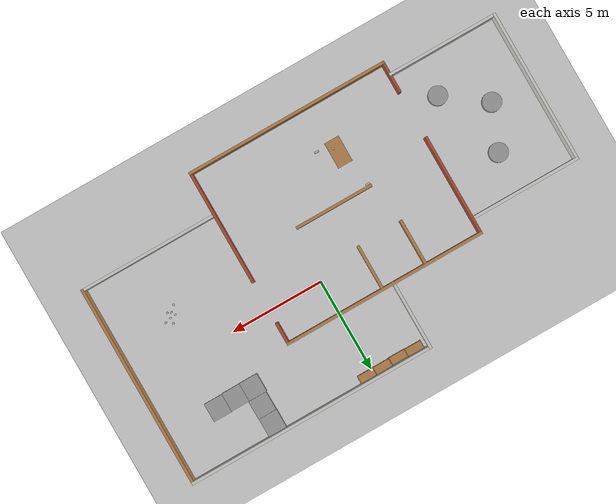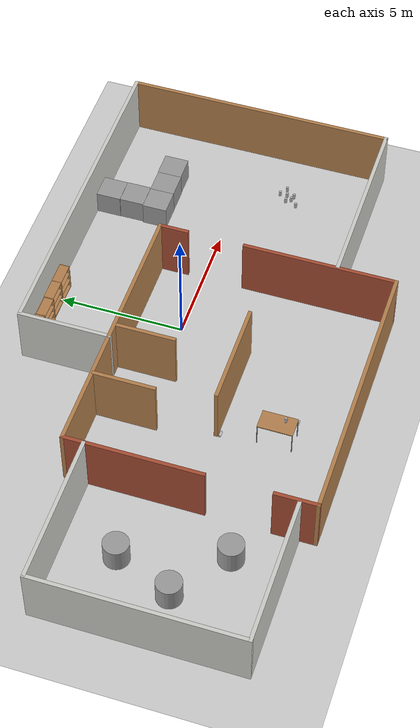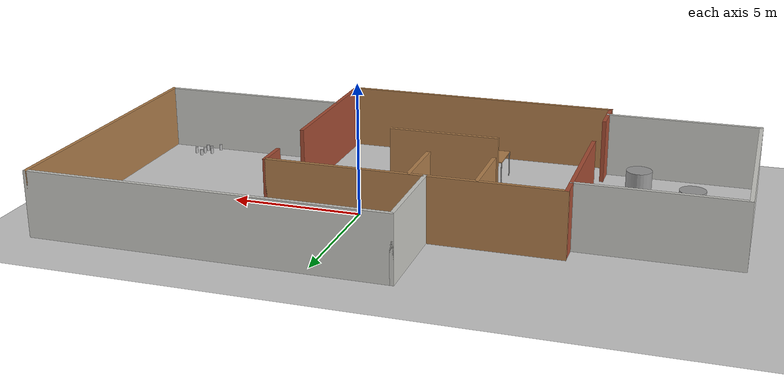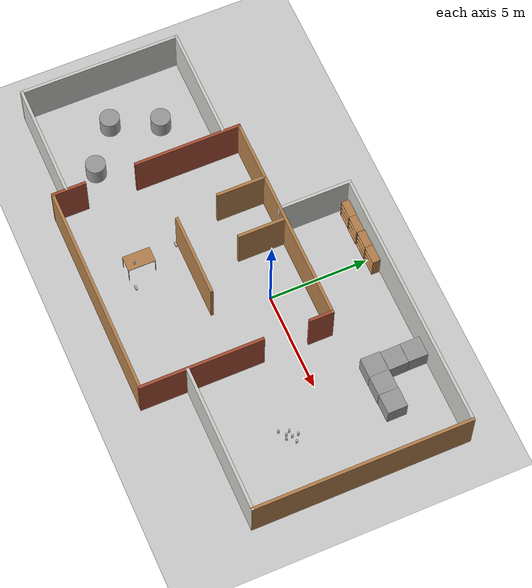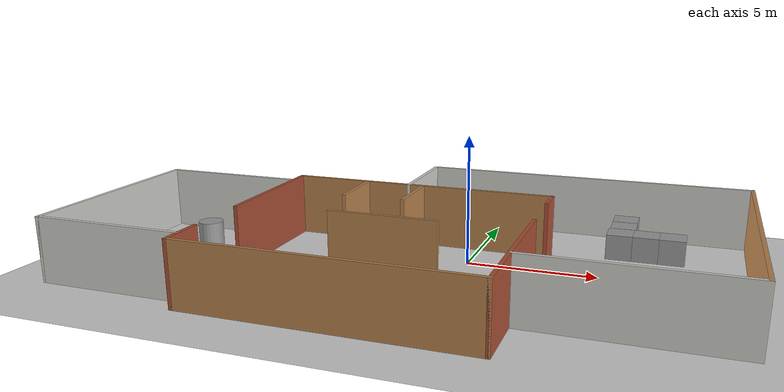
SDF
<sdf version="1.6">
 <world name="default">
  <light name="sun" type="directional">
   <pose>0 0 10 0 -0 0</pose>
   <diffuse>0.8 0.8 0.8 1</diffuse>
   <specular>0.1 0.1 0.1 1</specular>
   <attenuation>
    <range>1000</range>
    <constant>0.9</constant>
    <linear>0.01</linear>
    <quadratic>0.001</quadratic>
   </attenuation>
   <direction>-0.5 0.5 -1</direction>
  </light>
  <model name="ground_plane">
   <static>1</static>
   <link name="link">
    <collision name="collision">
     <geometry><plane><normal>0 0 1</normal><size>100 100</size></plane></geometry>
     <surface><friction><ode><mu>100</mu><mu2>50</mu2></ode></friction></surface>
    </collision>
    <visual name="visual">
     <cast_shadows>0</cast_shadows>
     <geometry><plane><normal>0 0 1</normal><size>100 100</size></plane></geometry>
     <material>
      <script><uri>file://media/materials/scripts/gazebo.material</uri><name>Gazebo/Grey</name></script>
     </material>
    </visual>
   </link>
  </model>
  <gravity>0 0 -9.8</gravity>
  <magnetic_field>6e-06 2.3e-05 -4.2e-05</magnetic_field>
  <atmosphere type="adiabatic"/>
  <physics name="default_physics" default="0" type="ode">
   <max_step_size>0.001</max_step_size>
   <real_time_factor>1</real_time_factor>
   <real_time_update_rate>1000</real_time_update_rate>
  </physics>
  <scene><ambient>0.4 0.4 0.4 1</ambient><background>0.7 0.7 0.7 1</background><shadows>1</shadows></scene>
  <spherical_coordinates>
   <surface_model>EARTH_WGS84</surface_model>
   <latitude_deg>0</latitude_deg>
   <longitude_deg>0</longitude_deg>
   <elevation>0</elevation>
   <heading_deg>0</heading_deg>
  </spherical_coordinates>
  <model name="test_world">
   <pose>-1.78434 -1.17966 0 0 -0 0</pose>
   <link name="Wall_1">
    <collision name="Wall_1_Collision">
     <geometry><box><size>4.25 0.15 2.5</size></box></geometry>
     <pose>0 0 1.25 0 -0 0</pose>
    </collision>
    <visual name="Wall_1_Visual">
     <pose>0 0 1.25 0 -0 0</pose>
     <geometry><box><size>4.25 0.15 2.5</size></box></geometry>
     <material>
      <script><uri>file://media/materials/scripts/gazebo.material</uri><name>Gazebo/Wood</name></script>
      <ambient>1 1 1 1</ambient>
     </material>
    </visual>
    <pose>-0.615659 -1.70034 0 0 -0 3.14159</pose>
   </link>
   <link name="Wall_12">
    <collision name="Wall_12_Collision">
     <geometry><box><size>11 0.15 2.5</size></box></geometry>
     <pose>0 0 1.25 0 -0 0</pose>
    </collision>
    <visual name="Wall_12_Visual">
     <pose>0 0 1.25 0 -0 0</pose>
     <geometry><box><size>11 0.15 2.5</size></box></geometry>
     <material>
      <script><uri>file://media/materials/scripts/gazebo.material</uri><name>Gazebo/Wood</name></script>
      <ambient>1 1 1 1</ambient>
     </material>
    </visual>
    <pose>-0.768184 -6.59875 0 0 -0 0</pose>
   </link>
   <link name="Wall_15">
    <collision name="Wall_15_Collision">
     <geometry><box><size>11 0.15 2.5</size></box></geometry>
     <pose>0 0 1.25 0 -0 0</pose>
    </collision>
    <visual name="Wall_15_Visual">
     <pose>0 0 1.25 0 -0 0</pose>
     <geometry><box><size>11 0.15 2.5</size></box></geometry>
     <material>
      <script><uri>file://media/materials/scripts/gazebo.material</uri><name>Gazebo/Wood</name></script>
      <ambient>1 1 1 1</ambient>
     </material>
    </visual>
    <pose>-0.768184 3.00125 0 0 -0 0</pose>
   </link>
   <link name="Wall_19">
    <collision name="Wall_19_Collision">
     <geometry><box><size>1.25 0.15 2.5</size></box></geometry>
     <pose>0 0 1.25 0 -0 0</pose>
    </collision>
    <visual name="Wall_19_Visual">
     <pose>0 0 1.25 0 -0 0</pose>
     <geometry><box><size>1.25 0.15 2.5</size></box></geometry>
     <material>
      <script><uri>file://media/materials/scripts/gazebo.material</uri><name>Gazebo/Bricks</name></script>
      <ambient>1 1 1 1</ambient>
     </material>
    </visual>
    <pose>4.65682 2.45125 0 0 0 -1.5708</pose>
   </link>
   <link name="Wall_21">
    <collision name="Wall_21_Collision">
     <geometry><box><size>6.25 0.15 2.5</size></box></geometry>
     <pose>0 0 1.25 0 -0 0</pose>
    </collision>
    <visual name="Wall_21_Visual">
     <pose>0 0 1.25 0 -0 0</pose>
     <geometry><box><size>6.25 0.15 2.5</size></box></geometry>
     <material>
      <script><uri>file://media/materials/scripts/gazebo.material</uri><name>Gazebo/Bricks</name></script>
      <ambient>1 1 1 1</ambient>
     </material>
    </visual>
    <pose>4.65682 -3.54875 0 0 -0 1.5708</pose>
   </link>
   <link name="Wall_23">
    <collision name="Wall_23_Collision">
     <geometry><box><size>5.5 0.15 2.5</size></box></geometry>
     <pose>0 0 1.25 0 -0 0</pose>
    </collision>
    <visual name="Wall_23_Visual">
     <pose>0 0 1.25 0 -0 0</pose>
     <geometry><box><size>5.5 0.15 2.5</size></box></geometry>
     <material>
      <script><uri>file://media/materials/scripts/gazebo.material</uri><name>Gazebo/Bricks</name></script>
      <ambient>1 1 1 1</ambient>
     </material>
    </visual>
    <pose>-6.19318 0.326247 0 0 0 -1.5708</pose>
   </link>
   <link name="Wall_25">
    <collision name="Wall_25_Collision">
     <geometry><box><size>1.75 0.15 2.5</size></box></geometry>
     <pose>0 0 1.25 0 -0 0</pose>
    </collision>
    <visual name="Wall_25_Visual">
     <pose>0 0 1.25 0 -0 0</pose>
     <geometry><box><size>1.75 0.15 2.5</size></box></geometry>
     <material>
      <script><uri>file://media/materials/scripts/gazebo.material</uri><name>Gazebo/Bricks</name></script>
      <ambient>1 1 1 1</ambient>
     </material>
    </visual>
    <pose>-6.19318 -5.79875 0 0 -0 1.5708</pose>
   </link>
   <link name="Wall_30">
    <collision name="Wall_30_Collision">
     <geometry><box><size>6 0.15 2.5</size></box></geometry>
     <pose>0 0 1.25 0 -0 0</pose>
    </collision>
    <visual name="Wall_30_Visual">
     <pose>0 0 1.25 0 -0 0</pose>
     <geometry><box><size>6 0.15 2.5</size></box></geometry>
     <material>
      <script><uri>file://media/materials/scripts/gazebo.material</uri><name>Gazebo/CeilingTiled</name></script>
      <ambient>1 1 1 1</ambient>
     </material>
    </visual>
    <pose>-9.15006 2.17634 0 0 -0 3.14159</pose>
   </link>
   <link name="Wall_31">
    <collision name="Wall_31_Collision">
     <geometry><box><size>8.25 0.15 2.5</size></box></geometry>
     <pose>0 0 1.25 0 -0 0</pose>
    </collision>
    <visual name="Wall_31_Visual">
     <pose>0 0 1.25 0 -0 0</pose>
     <geometry><box><size>8.25 0.15 2.5</size></box></geometry>
     <material>
      <script><uri>file://media/materials/scripts/gazebo.material</uri><name>Gazebo/CeilingTiled</name></script>
      <ambient>0.435294 0.796078 0.67451 1</ambient>
     </material>
    </visual>
    <pose>-12.0751 -1.87366 0 0 0 -1.5708</pose>
   </link>
   <link name="Wall_32">
    <collision name="Wall_32_Collision">
     <geometry><box><size>6 0.15 2.5</size></box></geometry>
     <pose>0 0 1.25 0 -0 0</pose>
    </collision>
    <visual name="Wall_32_Visual">
     <pose>0 0 1.25 0 -0 0</pose>
     <geometry><box><size>6 0.15 2.5</size></box></geometry>
     <material>
      <script><uri>file://media/materials/scripts/gazebo.material</uri><name>Gazebo/CeilingTiled</name></script>
      <ambient>1 1 1 1</ambient>
     </material>
    </visual>
    <pose>-9.15006 -5.92366 0 0 -0 0</pose>
   </link>
   <link name="Wall_34">
    <collision name="Wall_34_Collision">
     <geometry><box><size>2.5 0.15 2.5</size></box></geometry>
     <pose>0 0 1.25 0 -0 0</pose>
    </collision>
    <visual name="Wall_34_Visual">
     <pose>0 0 1.25 0 -0 0</pose>
     <geometry><box><size>2.5 0.15 2.5</size></box></geometry>
     <material>
      <script><uri>file://media/materials/scripts/gazebo.material</uri><name>Gazebo/Wood</name></script>
      <ambient>1 1 1 1</ambient>
     </material>
    </visual>
    <pose>-3.10226 1.75436 0 0 0 -1.5708</pose>
   </link>
   <link name="Wall_37">
    <collision name="Wall_37_Collision">
     <geometry><box><size>2.5 0.15 2.5</size></box></geometry>
     <pose>0 0 1.25 0 -0 0</pose>
    </collision>
    <visual name="Wall_37_Visual">
     <pose>0 0 1.25 0 -0 0</pose>
     <geometry><box><size>2.5 0.15 2.5</size></box></geometry>
     <material>
      <script><uri>file://media/materials/scripts/gazebo.material</uri><name>Gazebo/Wood</name></script>
      <ambient>1 1 1 1</ambient>
     </material>
    </visual>
    <pose>-0.673547 1.80062 0 0 0 -1.5708</pose>
   </link>
   <link name="Wall_39">
    <collision name="Wall_39_Collision">
     <geometry><box><size>3.75 0.15 2.5</size></box></geometry>
     <pose>0 0 1.25 0 -0 0</pose>
    </collision>
    <visual name="Wall_39_Visual">
     <pose>0 0 1.25 0 -0 0</pose>
     <geometry><box><size>3.75 0.15 2.5</size></box></geometry>
     <material>
      <script><uri>file://media/materials/scripts/gazebo.material</uri><name>Gazebo/CeilingTiled</name></script>
      <ambient>1 1 1 1</ambient>
     </material>
    </visual>
    <pose>-1.27494 4.79875 0 0 -0 1.5708</pose>
   </link>
   <link name="Wall_40">
    <collision name="Wall_40_Collision">
     <geometry><box><size>13.5 0.15 2.5</size></box></geometry>
     <pose>0 0 1.25 0 -0 0</pose>
    </collision>
    <visual name="Wall_40_Visual">
     <pose>0 0 1.25 0 -0 0</pose>
     <geometry><box><size>13.5 0.15 2.5</size></box></geometry>
     <material>
      <script><uri>file://media/materials/scripts/gazebo.material</uri><name>Gazebo/CeilingTiled</name></script>
      <ambient>1 1 1 1</ambient>
     </material>
    </visual>
    <pose>5.40006 6.59875 0 0 -0 0</pose>
   </link>
   <link name="Wall_41">
    <collision name="Wall_41_Collision">
     <geometry><box><size>11 0.15 2.5</size></box></geometry>
     <pose>0 0 1.25 0 -0 0</pose>
    </collision>
    <visual name="Wall_41_Visual">
     <pose>0 0 1.25 0 -0 0</pose>
     <geometry><box><size>11 0.15 2.5</size></box></geometry>
     <material>
      <script><uri>file://media/materials/scripts/gazebo.material</uri><name>Gazebo/Wood</name></script>
      <ambient>1 1 1 1</ambient>
     </material>
    </visual>
    <pose>12.0751 1.17375 0 0 0 -1.5708</pose>
   </link>
   <link name="Wall_42">
    <collision name="Wall_42_Collision">
     <geometry><box><size>7.5 0.15 2.5</size></box></geometry>
     <pose>0 0 1.25 0 -0 0</pose>
    </collision>
    <visual name="Wall_42_Visual">
     <pose>0 0 1.25 0 -0 0</pose>
     <geometry><box><size>7.5 0.15 2.5</size></box></geometry>
     <material>
      <script><uri>file://media/materials/scripts/gazebo.material</uri><name>Gazebo/CeilingTiled</name></script>
      <ambient>1 1 1 1</ambient>
     </material>
    </visual>
    <pose>8.40006 -4.25125 0 0 -0 3.14159</pose>
   </link>
   <static>1</static>
  </model>
  <model name="table">
   <static>0</static>
   <link name="link">
    <collision name="surface">
     <pose>0 0 1 0 -0 0</pose>
     <geometry><box><size>1.5 0.8 0.03</size></box></geometry>
     <surface><friction><ode><mu>0.6</mu><mu2>0.6</mu2></ode></friction></surface>
    </collision>
    <visual name="visual1">
     <pose>0 0 1 0 -0 0</pose>
     <geometry><box><size>1.4 0.8 0.04</size></box></geometry>
     <material>
      <script><uri>file://media/materials/scripts/gazebo.material</uri><name>Gazebo/Wood</name></script>
     </material>
    </visual>
    <collision name="front_left_leg">
     <pose>0.68 0.38 0.5 0 -0 0</pose>
     <geometry><cylinder><radius>0.02</radius><length>1</length></cylinder></geometry>
    </collision>
    <visual name="front_left_leg">
     <pose>0.68 0.38 0.5 0 -0 0</pose>
     <geometry><cylinder><radius>0.02</radius><length>1</length></cylinder></geometry>
     <material>
      <script><uri>file://media/materials/scripts/gazebo.material</uri><name>Gazebo/Grey</name></script>
     </material>
    </visual>
    <collision name="front_right_leg">
     <pose>0.68 -0.38 0.5 0 -0 0</pose>
     <geometry><cylinder><radius>0.02</radius><length>1</length></cylinder></geometry>
    </collision>
    <visual name="front_right_leg">
     <pose>0.68 -0.38 0.5 0 -0 0</pose>
     <geometry><cylinder><radius>0.02</radius><length>1</length></cylinder></geometry>
     <material>
      <script><uri>file://media/materials/scripts/gazebo.material</uri><name>Gazebo/Grey</name></script>
     </material>
    </visual>
    <collision name="back_right_leg">
     <pose>-0.68 -0.38 0.5 0 -0 0</pose>
     <geometry><cylinder><radius>0.02</radius><length>1</length></cylinder></geometry>
    </collision>
    <visual name="back_right_leg">
     <pose>-0.68 -0.38 0.5 0 -0 0</pose>
     <geometry><cylinder><radius>0.02</radius><length>1</length></cylinder></geometry>
     <material>
      <script><uri>file://media/materials/scripts/gazebo.material</uri><name>Gazebo/Grey</name></script>
     </material>
    </visual>
    <collision name="back_left_leg">
     <pose>-0.68 0.38 0.5 0 -0 0</pose>
     <geometry><cylinder><radius>0.02</radius><length>1</length></cylinder></geometry>
    </collision>
    <visual name="back_left_leg">
     <pose>-0.68 0.38 0.5 0 -0 0</pose>
     <geometry><cylinder><radius>0.02</radius><length>1</length></cylinder></geometry>
     <material>
      <script><uri>file://media/materials/scripts/gazebo.material</uri><name>Gazebo/Grey</name></script>
     </material>
    </visual>
    <inertial>
     <inertia><ixx>1</ixx><ixy>0</ixy><ixz>0</ixz><iyy>1</iyy><iyz>0</iyz><izz>1</izz></inertia>
     <mass>1</mass>
    </inertial>
   </link>
   <pose>-3.9313 -5.1003 -0.01973 -0.001367 0.002504 -1.57396</pose>
  </model>
  <model name="unit_box_0_2">
   <pose>5.4759 2.8341 0.5 0 -0 0.002449</pose>
   <link name="link">
    <inertial>
     <mass>1</mass>
     <inertia>
      <ixx>0.166667</ixx>
      <ixy>0</ixy>
      <ixz>0</ixz>
      <iyy>0.166667</iyy>
      <iyz>0</iyz>
      <izz>0.166667</izz>
     </inertia>
    </inertial>
    <collision name="collision"><geometry><box><size>1 1 1</size></box></geometry></collision>
    <visual name="visual">
     <geometry><box><size>1 1 1</size></box></geometry>
     <material>
      <script><name>Gazebo/Grey</name><uri>file://media/materials/scripts/gazebo.material</uri></script>
     </material>
    </visual>
   </link>
  </model>
  <model name="unit_box_0_3">
   <pose>5.50582 4.84337 0.5 0 -0 0.001441</pose>
   <link name="link">
    <inertial>
     <mass>1</mass>
     <inertia>
      <ixx>0.166667</ixx>
      <ixy>0</ixy>
      <ixz>0</ixz>
      <iyy>0.166667</iyy>
      <iyz>0</iyz>
      <izz>0.166667</izz>
     </inertia>
    </inertial>
    <collision name="collision"><geometry><box><size>1 1 1</size></box></geometry></collision>
    <visual name="visual">
     <geometry><box><size>1 1 1</size></box></geometry>
     <material>
      <script><name>Gazebo/Grey</name><uri>file://media/materials/scripts/gazebo.material</uri></script>
     </material>
    </visual>
   </link>
  </model>
  <model name="unit_box_0_4">
   <pose>5.52005 3.8392 0.5 0 -0 0.010006</pose>
   <link name="link">
    <inertial>
     <mass>1</mass>
     <inertia>
      <ixx>0.166667</ixx>
      <ixy>0</ixy>
      <ixz>0</ixz>
      <iyy>0.166667</iyy>
      <iyz>0</iyz>
      <izz>0.166667</izz>
     </inertia>
    </inertial>
    <collision name="collision"><geometry><box><size>1 1 1</size></box></geometry></collision>
    <visual name="visual">
     <geometry><box><size>1 1 1</size></box></geometry>
     <material>
      <script><name>Gazebo/Grey</name><uri>file://media/materials/scripts/gazebo.material</uri></script>
     </material>
    </visual>
   </link>
  </model>
  <model name="unit_box_0_5">
   <pose>6.47588 2.84475 0.499995 1e-05 -0 0.002442</pose>
   <link name="link">
    <inertial>
     <mass>1</mass>
     <inertia>
      <ixx>0.166667</ixx>
      <ixy>0</ixy>
      <ixz>0</ixz>
      <iyy>0.166667</iyy>
      <iyz>0</iyz>
      <izz>0.166667</izz>
     </inertia>
    </inertial>
    <collision name="collision"><geometry><box><size>1 1 1</size></box></geometry></collision>
    <visual name="visual">
     <geometry><box><size>1 1 1</size></box></geometry>
     <material>
      <script><name>Gazebo/Grey</name><uri>file://media/materials/scripts/gazebo.material</uri></script>
     </material>
    </visual>
   </link>
  </model>
  <model name="unit_box_0_6">
   <pose>7.47582 2.86667 0.493949 0.001752 0.000529 0.002428</pose>
   <link name="link">
    <inertial>
     <mass>1</mass>
     <inertia>
      <ixx>0.166667</ixx>
      <ixy>0</ixy>
      <ixz>0</ixz>
      <iyy>0.166667</iyy>
      <iyz>0</iyz>
      <izz>0.166667</izz>
     </inertia>
    </inertial>
    <collision name="collision"><geometry><box><size>1 1 1</size></box></geometry></collision>
    <visual name="visual">
     <geometry><box><size>1 1 1</size></box></geometry>
     <material>
      <script><name>Gazebo/Grey</name><uri>file://media/materials/scripts/gazebo.material</uri></script>
     </material>
    </visual>
   </link>
  </model>
  <model name="unit_cylinder_0">
   <pose>-9.55509 -5.07728 0.499997 3e-06 2e-06 0</pose>
   <link name="link">
    <inertial>
     <mass>1</mass>
     <inertia><ixx>0.145833</ixx><ixy>0</ixy><ixz>0</ixz><iyy>0.145833</iyy><iyz>0</iyz><izz>0.125</izz></inertia>
    </inertial>
    <collision name="collision">
     <geometry><cylinder><radius>0.5</radius><length>1</length></cylinder></geometry>
    </collision>
    <visual name="visual">
     <geometry><cylinder><radius>0.5</radius><length>1</length></cylinder></geometry>
     <material>
      <script><name>Gazebo/Grey</name><uri>file://media/materials/scripts/gazebo.material</uri></script>
     </material>
    </visual>
   </link>
  </model>
  <model name="unit_cylinder_1">
   <pose>-11.7072 -3.47956 0.499994 -3e-06 -2e-06 0</pose>
   <link name="link">
    <inertial>
     <mass>1</mass>
     <inertia><ixx>0.145833</ixx><ixy>0</ixy><ixz>0</ixz><iyy>0.145833</iyy><iyz>0</iyz><izz>0.125</izz></inertia>
    </inertial>
    <collision name="collision">
     <geometry><cylinder><radius>0.5</radius><length>1</length></cylinder></geometry>
    </collision>
    <visual name="visual">
     <geometry><cylinder><radius>0.5</radius><length>1</length></cylinder></geometry>
     <material>
      <script><name>Gazebo/Grey</name><uri>file://media/materials/scripts/gazebo.material</uri></script>
     </material>
    </visual>
   </link>
  </model>
  <model name="unit_cylinder_2">
   <pose>-10.7566 -1.1694 0.499997 3e-06 2e-06 0</pose>
   <link name="link">
    <inertial>
     <mass>1</mass>
     <inertia><ixx>0.145833</ixx><ixy>0</ixy><ixz>0</ixz><iyy>0.145833</iyy><iyz>0</iyz><izz>0.125</izz></inertia>
    </inertial>
    <collision name="collision">
     <geometry><cylinder><radius>0.5</radius><length>1</length></cylinder></geometry>
    </collision>
    <visual name="visual">
     <geometry><cylinder><radius>0.5</radius><length>1</length></cylinder></geometry>
     <material>
      <script><name>Gazebo/Grey</name><uri>file://media/materials/scripts/gazebo.material</uri></script>
     </material>
    </visual>
   </link>
  </model>
  <model name="bookshelf_1">
   <static>1</static>
   <link name="link">
    <inertial><mass>1</mass></inertial>
    <collision name="back">
     <pose>0 0.005 0.6 0 -0 0</pose>
     <geometry><box><size>0.9 0.01 1.2</size></box></geometry>
    </collision>
    <visual name="visual1">
     <pose>0 0.005 0.6 0 -0 0</pose>
     <geometry><box><size>0.9 0.01 1.2</size></box></geometry>
     <material>
      <script><uri>file://media/materials/scripts/gazebo.material</uri><name>Gazebo/Wood</name></script>
     </material>
    </visual>
    <collision name="left_side">
     <pose>0.45 -0.195 0.6 0 -0 0</pose>
     <geometry><box><size>0.02 0.4 1.2</size></box></geometry>
    </collision>
    <visual name="visual2">
     <pose>0.45 -0.195 0.6 0 -0 0</pose>
     <geometry><box><size>0.02 0.4 1.2</size></box></geometry>
     <material>
      <script><uri>file://media/materials/scripts/gazebo.material</uri><name>Gazebo/Wood</name></script>
     </material>
    </visual>
    <collision name="right_side">
     <pose>-0.45 -0.195 0.6 0 -0 0</pose>
     <geometry><box><size>0.02 0.4 1.2</size></box></geometry>
    </collision>
    <visual name="visual3">
     <pose>-0.45 -0.195 0.6 0 -0 0</pose>
     <geometry><box><size>0.02 0.4 1.2</size></box></geometry>
     <material>
      <script><uri>file://media/materials/scripts/gazebo.material</uri><name>Gazebo/Wood</name></script>
     </material>
    </visual>
    <collision name="bottom">
     <pose>0 -0.195 0.03 0 -0 0</pose>
     <geometry><box><size>0.88 0.4 0.06</size></box></geometry>
    </collision>
    <visual name="visual4">
     <pose>0 -0.195 0.03 0 -0 0</pose>
     <geometry><box><size>0.88 0.4 0.06</size></box></geometry>
     <material>
      <script><uri>file://media/materials/scripts/gazebo.material</uri><name>Gazebo/Wood</name></script>
     </material>
    </visual>
    <collision name="top">
     <pose>0 -0.195 1.19 0 -0 0</pose>
     <geometry><box><size>0.88 0.4 0.02</size></box></geometry>
    </collision>
    <visual name="visual5">
     <pose>0 -0.195 1.19 0 -0 0</pose>
     <geometry><box><size>0.88 0.4 0.02</size></box></geometry>
     <material>
      <script><uri>file://media/materials/scripts/gazebo.material</uri><name>Gazebo/Wood</name></script>
     </material>
    </visual>
    <collision name="low_shelf">
     <pose>0 -0.195 0.43 0 -0 0</pose>
     <geometry><box><size>0.88 0.4 0.02</size></box></geometry>
    </collision>
    <visual name="visual6">
     <pose>0 -0.195 0.43 0 -0 0</pose>
     <geometry><box><size>0.88 0.4 0.02</size></box></geometry>
     <material>
      <script><uri>file://media/materials/scripts/gazebo.material</uri><name>Gazebo/Wood</name></script>
     </material>
    </visual>
    <collision name="high_shelf">
     <pose>0 -0.195 0.8 0 -0 0</pose>
     <geometry><box><size>0.88 0.4 0.02</size></box></geometry>
    </collision>
    <visual name="visual7">
     <pose>0 -0.195 0.8 0 -0 0</pose>
     <geometry><box><size>0.88 0.4 0.02</size></box></geometry>
     <material>
      <script><uri>file://media/materials/scripts/gazebo.material</uri><name>Gazebo/Wood</name></script>
     </material>
    </visual>
   </link>
   <pose>-2.35602 5.3174 0 0 -0 0</pose>
  </model>
  <model name="bookshelf_1_clone">
   <static>1</static>
   <link name="link">
    <inertial><mass>1</mass></inertial>
    <collision name="back">
     <pose>0 0.005 0.6 0 -0 0</pose>
     <geometry><box><size>0.9 0.01 1.2</size></box></geometry>
    </collision>
    <visual name="visual1">
     <pose>0 0.005 0.6 0 -0 0</pose>
     <geometry><box><size>0.9 0.01 1.2</size></box></geometry>
     <material>
      <script><uri>file://media/materials/scripts/gazebo.material</uri><name>Gazebo/Wood</name></script>
     </material>
    </visual>
    <collision name="left_side">
     <pose>0.45 -0.195 0.6 0 -0 0</pose>
     <geometry><box><size>0.02 0.4 1.2</size></box></geometry>
    </collision>
    <visual name="visual2">
     <pose>0.45 -0.195 0.6 0 -0 0</pose>
     <geometry><box><size>0.02 0.4 1.2</size></box></geometry>
     <material>
      <script><uri>file://media/materials/scripts/gazebo.material</uri><name>Gazebo/Wood</name></script>
     </material>
    </visual>
    <collision name="right_side">
     <pose>-0.45 -0.195 0.6 0 -0 0</pose>
     <geometry><box><size>0.02 0.4 1.2</size></box></geometry>
    </collision>
    <visual name="visual3">
     <pose>-0.45 -0.195 0.6 0 -0 0</pose>
     <geometry><box><size>0.02 0.4 1.2</size></box></geometry>
     <material>
      <script><uri>file://media/materials/scripts/gazebo.material</uri><name>Gazebo/Wood</name></script>
     </material>
    </visual>
    <collision name="bottom">
     <pose>0 -0.195 0.03 0 -0 0</pose>
     <geometry><box><size>0.88 0.4 0.06</size></box></geometry>
    </collision>
    <visual name="visual4">
     <pose>0 -0.195 0.03 0 -0 0</pose>
     <geometry><box><size>0.88 0.4 0.06</size></box></geometry>
     <material>
      <script><uri>file://media/materials/scripts/gazebo.material</uri><name>Gazebo/Wood</name></script>
     </material>
    </visual>
    <collision name="top">
     <pose>0 -0.195 1.19 0 -0 0</pose>
     <geometry><box><size>0.88 0.4 0.02</size></box></geometry>
    </collision>
    <visual name="visual5">
     <pose>0 -0.195 1.19 0 -0 0</pose>
     <geometry><box><size>0.88 0.4 0.02</size></box></geometry>
     <material>
      <script><uri>file://media/materials/scripts/gazebo.material</uri><name>Gazebo/Wood</name></script>
     </material>
    </visual>
    <collision name="low_shelf">
     <pose>0 -0.195 0.43 0 -0 0</pose>
     <geometry><box><size>0.88 0.4 0.02</size></box></geometry>
    </collision>
    <visual name="visual6">
     <pose>0 -0.195 0.43 0 -0 0</pose>
     <geometry><box><size>0.88 0.4 0.02</size></box></geometry>
     <material>
      <script><uri>file://media/materials/scripts/gazebo.material</uri><name>Gazebo/Wood</name></script>
     </material>
    </visual>
    <collision name="high_shelf">
     <pose>0 -0.195 0.8 0 -0 0</pose>
     <geometry><box><size>0.88 0.4 0.02</size></box></geometry>
    </collision>
    <visual name="visual7">
     <pose>0 -0.195 0.8 0 -0 0</pose>
     <geometry><box><size>0.88 0.4 0.02</size></box></geometry>
     <material>
      <script><uri>file://media/materials/scripts/gazebo.material</uri><name>Gazebo/Wood</name></script>
     </material>
    </visual>
   </link>
   <pose>-1.47476 5.29885 0 0 -0 0</pose>
  </model>
  <model name="bookshelf_1_clone_0">
   <static>1</static>
   <link name="link">
    <inertial><mass>1</mass></inertial>
    <collision name="back">
     <pose>0 0.005 0.6 0 -0 0</pose>
     <geometry><box><size>0.9 0.01 1.2</size></box></geometry>
    </collision>
    <visual name="visual1">
     <pose>0 0.005 0.6 0 -0 0</pose>
     <geometry><box><size>0.9 0.01 1.2</size></box></geometry>
     <material>
      <script><uri>file://media/materials/scripts/gazebo.material</uri><name>Gazebo/Wood</name></script>
     </material>
    </visual>
    <collision name="left_side">
     <pose>0.45 -0.195 0.6 0 -0 0</pose>
     <geometry><box><size>0.02 0.4 1.2</size></box></geometry>
    </collision>
    <visual name="visual2">
     <pose>0.45 -0.195 0.6 0 -0 0</pose>
     <geometry><box><size>0.02 0.4 1.2</size></box></geometry>
     <material>
      <script><uri>file://media/materials/scripts/gazebo.material</uri><name>Gazebo/Wood</name></script>
     </material>
    </visual>
    <collision name="right_side">
     <pose>-0.45 -0.195 0.6 0 -0 0</pose>
     <geometry><box><size>0.02 0.4 1.2</size></box></geometry>
    </collision>
    <visual name="visual3">
     <pose>-0.45 -0.195 0.6 0 -0 0</pose>
     <geometry><box><size>0.02 0.4 1.2</size></box></geometry>
     <material>
      <script><uri>file://media/materials/scripts/gazebo.material</uri><name>Gazebo/Wood</name></script>
     </material>
    </visual>
    <collision name="bottom">
     <pose>0 -0.195 0.03 0 -0 0</pose>
     <geometry><box><size>0.88 0.4 0.06</size></box></geometry>
    </collision>
    <visual name="visual4">
     <pose>0 -0.195 0.03 0 -0 0</pose>
     <geometry><box><size>0.88 0.4 0.06</size></box></geometry>
     <material>
      <script><uri>file://media/materials/scripts/gazebo.material</uri><name>Gazebo/Wood</name></script>
     </material>
    </visual>
    <collision name="top">
     <pose>0 -0.195 1.19 0 -0 0</pose>
     <geometry><box><size>0.88 0.4 0.02</size></box></geometry>
    </collision>
    <visual name="visual5">
     <pose>0 -0.195 1.19 0 -0 0</pose>
     <geometry><box><size>0.88 0.4 0.02</size></box></geometry>
     <material>
      <script><uri>file://media/materials/scripts/gazebo.material</uri><name>Gazebo/Wood</name></script>
     </material>
    </visual>
    <collision name="low_shelf">
     <pose>0 -0.195 0.43 0 -0 0</pose>
     <geometry><box><size>0.88 0.4 0.02</size></box></geometry>
    </collision>
    <visual name="visual6">
     <pose>0 -0.195 0.43 0 -0 0</pose>
     <geometry><box><size>0.88 0.4 0.02</size></box></geometry>
     <material>
      <script><uri>file://media/materials/scripts/gazebo.material</uri><name>Gazebo/Wood</name></script>
     </material>
    </visual>
    <collision name="high_shelf">
     <pose>0 -0.195 0.8 0 -0 0</pose>
     <geometry><box><size>0.88 0.4 0.02</size></box></geometry>
    </collision>
    <visual name="visual7">
     <pose>0 -0.195 0.8 0 -0 0</pose>
     <geometry><box><size>0.88 0.4 0.02</size></box></geometry>
     <material>
      <script><uri>file://media/materials/scripts/gazebo.material</uri><name>Gazebo/Wood</name></script>
     </material>
    </visual>
   </link>
   <pose>-0.562909 5.32299 0 0 -0 0</pose>
  </model>
  <model name="bookshelf_1_clone_1">
   <static>1</static>
   <link name="link">
    <inertial><mass>1</mass></inertial>
    <collision name="back">
     <pose>0 0.005 0.6 0 -0 0</pose>
     <geometry><box><size>0.9 0.01 1.2</size></box></geometry>
    </collision>
    <visual name="visual1">
     <pose>0 0.005 0.6 0 -0 0</pose>
     <geometry><box><size>0.9 0.01 1.2</size></box></geometry>
     <material>
      <script><uri>file://media/materials/scripts/gazebo.material</uri><name>Gazebo/Wood</name></script>
     </material>
    </visual>
    <collision name="left_side">
     <pose>0.45 -0.195 0.6 0 -0 0</pose>
     <geometry><box><size>0.02 0.4 1.2</size></box></geometry>
    </collision>
    <visual name="visual2">
     <pose>0.45 -0.195 0.6 0 -0 0</pose>
     <geometry><box><size>0.02 0.4 1.2</size></box></geometry>
     <material>
      <script><uri>file://media/materials/scripts/gazebo.material</uri><name>Gazebo/Wood</name></script>
     </material>
    </visual>
    <collision name="right_side">
     <pose>-0.45 -0.195 0.6 0 -0 0</pose>
     <geometry><box><size>0.02 0.4 1.2</size></box></geometry>
    </collision>
    <visual name="visual3">
     <pose>-0.45 -0.195 0.6 0 -0 0</pose>
     <geometry><box><size>0.02 0.4 1.2</size></box></geometry>
     <material>
      <script><uri>file://media/materials/scripts/gazebo.material</uri><name>Gazebo/Wood</name></script>
     </material>
    </visual>
    <collision name="bottom">
     <pose>0 -0.195 0.03 0 -0 0</pose>
     <geometry><box><size>0.88 0.4 0.06</size></box></geometry>
    </collision>
    <visual name="visual4">
     <pose>0 -0.195 0.03 0 -0 0</pose>
     <geometry><box><size>0.88 0.4 0.06</size></box></geometry>
     <material>
      <script><uri>file://media/materials/scripts/gazebo.material</uri><name>Gazebo/Wood</name></script>
     </material>
    </visual>
    <collision name="top">
     <pose>0 -0.195 1.19 0 -0 0</pose>
     <geometry><box><size>0.88 0.4 0.02</size></box></geometry>
    </collision>
    <visual name="visual5">
     <pose>0 -0.195 1.19 0 -0 0</pose>
     <geometry><box><size>0.88 0.4 0.02</size></box></geometry>
     <material>
      <script><uri>file://media/materials/scripts/gazebo.material</uri><name>Gazebo/Wood</name></script>
     </material>
    </visual>
    <collision name="low_shelf">
     <pose>0 -0.195 0.43 0 -0 0</pose>
     <geometry><box><size>0.88 0.4 0.02</size></box></geometry>
    </collision>
    <visual name="visual6">
     <pose>0 -0.195 0.43 0 -0 0</pose>
     <geometry><box><size>0.88 0.4 0.02</size></box></geometry>
     <material>
      <script><uri>file://media/materials/scripts/gazebo.material</uri><name>Gazebo/Wood</name></script>
     </material>
    </visual>
    <collision name="high_shelf">
     <pose>0 -0.195 0.8 0 -0 0</pose>
     <geometry><box><size>0.88 0.4 0.02</size></box></geometry>
    </collision>
    <visual name="visual7">
     <pose>0 -0.195 0.8 0 -0 0</pose>
     <geometry><box><size>0.88 0.4 0.02</size></box></geometry>
     <material>
      <script><uri>file://media/materials/scripts/gazebo.material</uri><name>Gazebo/Wood</name></script>
     </material>
    </visual>
   </link>
   <pose>0.313567 5.32284 0 0 -0 0</pose>
  </model>
  <model name="beer">
   <link name="link">
    <pose>0 0 0.115 0 -0 0</pose>
    <inertial>
     <mass>0.39</mass>
     <inertia><ixx>0.00058</ixx><ixy>0</ixy><ixz>0</ixz><iyy>0.00058</iyy><iyz>0</iyz><izz>0.00019</izz></inertia>
    </inertial>
    <collision name="collision">
     <geometry><cylinder><radius>0.055</radius><length>0.23</length></cylinder></geometry>
    </collision>
    <visual name="visual">
     <geometry><cylinder><radius>0.055</radius><length>0.23</length></cylinder></geometry>
     <material>
      <script>
       <uri>model://beer/materials/scripts</uri>
       <uri>model://beer/materials/textures</uri>
       <name>Beer/Diffuse</name>
      </script>
     </material>
    </visual>
   </link>
   <pose>-2.90338 -5.65813 0.054918 1.56986 -1.18432 -1.56992</pose>
  </model>
  <model name="beer_clone">
   <link name="link">
    <pose>0 0 0.115 0 -0 0</pose>
    <inertial>
     <mass>0.39</mass>
     <inertia><ixx>0.00058</ixx><ixy>0</ixy><ixz>0</ixz><iyy>0.00058</iyy><iyz>0</iyz><izz>0.00019</izz></inertia>
    </inertial>
    <collision name="collision">
     <geometry><cylinder><radius>0.055</radius><length>0.23</length></cylinder></geometry>
    </collision>
    <visual name="visual">
     <geometry><cylinder><radius>0.055</radius><length>0.23</length></cylinder></geometry>
     <material>
      <script>
       <uri>model://beer/materials/scripts</uri>
       <uri>model://beer/materials/textures</uri>
       <name>Beer/Diffuse</name>
      </script>
     </material>
    </visual>
   </link>
   <pose>7.29249 -1.8432 0.964762 4e-06 -0 -0.005084</pose>
  </model>
  <model name="beer_clone_0">
   <link name="link">
    <pose>0 0 0.115 0 -0 0</pose>
    <inertial>
     <mass>0.39</mass>
     <inertia><ixx>0.00058</ixx><ixy>0</ixy><ixz>0</ixz><iyy>0.00058</iyy><iyz>0</iyz><izz>0.00019</izz></inertia>
    </inertial>
    <collision name="collision">
     <geometry><cylinder><radius>0.055</radius><length>0.23</length></cylinder></geometry>
    </collision>
    <visual name="visual">
     <geometry><cylinder><radius>0.055</radius><length>0.23</length></cylinder></geometry>
     <material>
      <script>
       <uri>model://beer/materials/scripts</uri>
       <uri>model://beer/materials/textures</uri>
       <name>Beer/Diffuse</name>
      </script>
     </material>
    </visual>
   </link>
   <pose>7.28711 -2.14066 0.964765 7.8e-05 5e-06 0.008535</pose>
  </model>
  <model name="beer_clone_1">
   <link name="link">
    <pose>0 0 0.115 0 -0 0</pose>
    <inertial>
     <mass>0.39</mass>
     <inertia><ixx>0.00058</ixx><ixy>0</ixy><ixz>0</ixz><iyy>0.00058</iyy><iyz>0</iyz><izz>0.00019</izz></inertia>
    </inertial>
    <collision name="collision">
     <geometry><cylinder><radius>0.055</radius><length>0.23</length></cylinder></geometry>
    </collision>
    <visual name="visual">
     <geometry><cylinder><radius>0.055</radius><length>0.23</length></cylinder></geometry>
     <material>
      <script>
       <uri>model://beer/materials/scripts</uri>
       <uri>model://beer/materials/textures</uri>
       <name>Beer/Diffuse</name>
      </script>
     </material>
    </visual>
   </link>
   <pose>7.29907 -2.43238 0.964765 6.1e-05 1e-06 -0.015138</pose>
  </model>
  <model name="beer_clone_2">
   <link name="link">
    <pose>0 0 0.115 0 -0 0</pose>
    <inertial>
     <mass>0.39</mass>
     <inertia><ixx>0.00058</ixx><ixy>0</ixy><ixz>0</ixz><iyy>0.00058</iyy><iyz>0</iyz><izz>0.00019</izz></inertia>
    </inertial>
    <collision name="collision">
     <geometry><cylinder><radius>0.055</radius><length>0.23</length></cylinder></geometry>
    </collision>
    <visual name="visual">
     <geometry><cylinder><radius>0.055</radius><length>0.23</length></cylinder></geometry>
     <material>
      <script>
       <uri>model://beer/materials/scripts</uri>
       <uri>model://beer/materials/textures</uri>
       <name>Beer/Diffuse</name>
      </script>
     </material>
    </visual>
   </link>
   <pose>7.11228 -2.36416 0.964763 1.3e-05 1.8e-05 -0.004681</pose>
  </model>
  <model name="beer_clone_3">
   <link name="link">
    <pose>0 0 0.115 0 -0 0</pose>
    <inertial>
     <mass>0.39</mass>
     <inertia><ixx>0.00058</ixx><ixy>0</ixy><ixz>0</ixz><iyy>0.00058</iyy><iyz>0</iyz><izz>0.00019</izz></inertia>
    </inertial>
    <collision name="collision">
     <geometry><cylinder><radius>0.055</radius><length>0.23</length></cylinder></geometry>
    </collision>
    <visual name="visual">
     <geometry><cylinder><radius>0.055</radius><length>0.23</length></cylinder></geometry>
     <material>
      <script>
       <uri>model://beer/materials/scripts</uri>
       <uri>model://beer/materials/textures</uri>
       <name>Beer/Diffuse</name>
      </script>
     </material>
    </visual>
   </link>
   <pose>6.9948 -2.16482 0.964753 -3e-06 -1e-06 -0.009031</pose>
  </model>
  <model name="beer_clone_4">
   <link name="link">
    <pose>0 0 0.115 0 -0 0</pose>
    <inertial>
     <mass>0.39</mass>
     <inertia><ixx>0.00058</ixx><ixy>0</ixy><ixz>0</ixz><iyy>0.00058</iyy><iyz>0</iyz><izz>0.00019</izz></inertia>
    </inertial>
    <collision name="collision">
     <geometry><cylinder><radius>0.055</radius><length>0.23</length></cylinder></geometry>
    </collision>
    <visual name="visual">
     <geometry><cylinder><radius>0.055</radius><length>0.23</length></cylinder></geometry>
     <material>
      <script>
       <uri>model://beer/materials/scripts</uri>
       <uri>model://beer/materials/textures</uri>
       <name>Beer/Diffuse</name>
      </script>
     </material>
    </visual>
   </link>
   <pose>6.83467 -2.6332 0.964752 -3e-06 -1e-05 -0.008534</pose>
  </model>
  <model name="beer_clone_5">
   <link name="link">
    <pose>0 0 0.115 0 -0 0</pose>
    <inertial>
     <mass>0.39</mass>
     <inertia><ixx>0.00058</ixx><ixy>0</ixy><ixz>0</ixz><iyy>0.00058</iyy><iyz>0</iyz><izz>0.00019</izz></inertia>
    </inertial>
    <collision name="collision">
     <geometry><cylinder><radius>0.055</radius><length>0.23</length></cylinder></geometry>
    </collision>
    <visual name="visual">
     <geometry><cylinder><radius>0.055</radius><length>0.23</length></cylinder></geometry>
     <material>
      <script>
       <uri>model://beer/materials/scripts</uri>
       <uri>model://beer/materials/textures</uri>
       <name>Beer/Diffuse</name>
      </script>
     </material>
    </visual>
   </link>
   <pose>7.60493 -2.05503 0.964763 -2.5e-05 -5e-06 -0.012203</pose>
  </model>
  <model name="beer_clone_6">
   <link name="link">
    <pose>0 0 0.115 0 -0 0</pose>
    <inertial>
     <mass>0.39</mass>
     <inertia><ixx>0.00058</ixx><ixy>0</ixy><ixz>0</ixz><iyy>0.00058</iyy><iyz>0</iyz><izz>0.00019</izz></inertia>
    </inertial>
    <collision name="collision">
     <geometry><cylinder><radius>0.055</radius><length>0.23</length></cylinder></geometry>
    </collision>
    <visual name="visual">
     <geometry><cylinder><radius>0.055</radius><length>0.23</length></cylinder></geometry>
     <material>
      <script>
       <uri>model://beer/materials/scripts</uri>
       <uri>model://beer/materials/textures</uri>
       <name>Beer/Diffuse</name>
      </script>
     </material>
    </visual>
   </link>
   <pose>-3.78431 -5.37813 0.994375 0.003037 0.000765 0.247527</pose>
  </model>
  <model name="beer_clone_7">
   <link name="link">
    <pose>0 0 0.115 0 -0 0</pose>
    <inertial>
     <mass>0.39</mass>
     <inertia><ixx>0.00058</ixx><ixy>0</ixy><ixz>0</ixz><iyy>0.00058</iyy><iyz>0</iyz><izz>0.00019</izz></inertia>
    </inertial>
    <collision name="collision">
     <geometry><cylinder><radius>0.055</radius><length>0.23</length></cylinder></geometry>
    </collision>
    <visual name="visual">
     <geometry><cylinder><radius>0.055</radius><length>0.23</length></cylinder></geometry>
     <material>
      <script>
       <uri>model://beer/materials/scripts</uri>
       <uri>model://beer/materials/textures</uri>
       <name>Beer/Diffuse</name>
      </script>
     </material>
    </visual>
   </link>
   <pose>-4.52797 -3.02766 0.054918 1.57043 0.2163 1.57072</pose>
  </model>
 </world>
</sdf>
